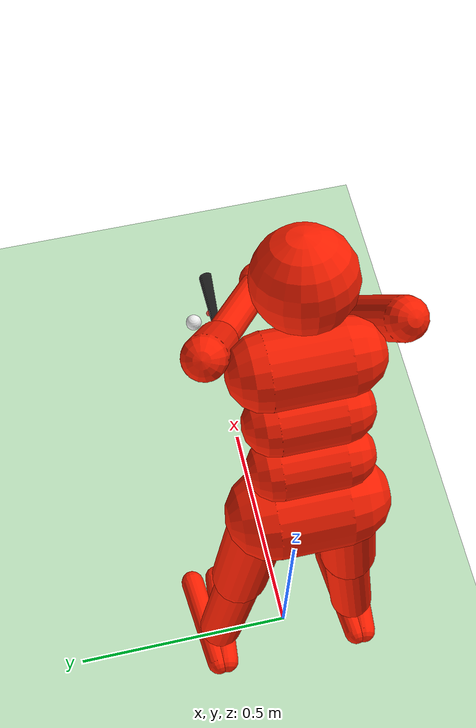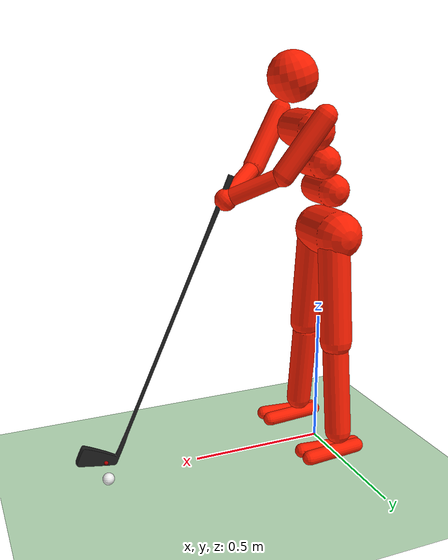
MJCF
<mujoco model="Simplified Human">

  <!-- passo de 0,5 ms para resolver o impacto, com gravidade em m/s² no sentido -Z
       o controlo atualiza em cada passo, são 2000 atualizações por segundo simulado -->
  <option timestep="0.0005" gravity="0 0 -9.81"/>
  <compiler meshdir="models"/>

  <asset>
    <texture type="skybox" builtin="gradient" rgb1=".3 .5 .7" rgb2="0 0 0" width="512" height="512"/>
    <texture name="body" type="cube" builtin="flat" mark="cross" width="127" height="1278"
             rgb1="1 .35 .05" rgb2="1 .35 .05" markrgb="1 1 1" random="0.01"/>
    <material name="body" texture="body" texuniform="true" rgba="1 .35 .05 1"/>
    <material name="club" rgba="0.12 0.12 0.12 1"/>
    <material name="ball" rgba="0.95 0.95 0.95 1"/>
    <material name="grass" rgba="0.15 0.55 0.12 1" reflectance="0.05"/>
    <mesh name="golf_club_mesh" file="golf_club.stl" scale="0.0103 0.0103 0.0103"/>
    <mesh name="golf_club_head_mesh" file="golf_club_head.stl" inertia="convex"/>
    <texture name="grid" type="2d" builtin="checker" width="512" height="512" rgb1=".1 .2 .3" rgb2=".2 .3 .4"/>
    <material name="grid" texture="grid" texrepeat="1 1" texuniform="true" reflectance=".2"/>
  </asset>

  <default>
    <motor ctrlrange="-1 1" ctrllimited="true"/>
    <default class="body">
      <geom type="capsule" condim="1" friction=".7" solimp=".9 .99 .003" solref=".015 1" material="body"/>
      <joint type="hinge" damping="2" stiffness="0" armature=".01" limited="true" solimplimit="0 .99 .01"/>
      <default class="big_joint">
        <joint damping="20" stiffness="100"/>
        <default class="big_stiff_joint">
          <joint damping="25" stiffness="140"/>
        </default>
      </default>
    </default>
  </default>

  <visual>
    <map force="0.1" zfar="30"/>
    <rgba haze="0.15 0.25 0.35 1"/>
    <quality shadowsize="4096"/>
    <global offwidth="800" offheight="800"/>
  </visual>

  <worldbody>

    <!-- câmara fixa em +X, voltada para a frente do jogador -->
    <camera name="front_fixed" pos="3.3 0 1.1" xyaxes="0 1 0 0 0 1" fovy="50"/>

    <geom name="floor" type="plane" size="5 5 0.1" rgba="0.75 0.9 0.75 1" contype="1" conaffinity="1"/>

    <!-- bola com 6 DOF livres, 3 translações e 3 rotações, sem atuação
         freejoint usa 7 coordenadas de posição por causa do quaternion da orientação -->
    <body name="golf_ball" pos="0.85 0.042 0.022">
      <freejoint name="golf_ball_free"/>
      <geom name="golf_ball_geom" type="sphere" size="0.0213" mass="0.046" material="ball"/>
    </body>

    <body name="torso" pos="0 0 1.255" childclass="body">
      <camera name="back" pos="-3 0 1" xyaxes="0 -1 0 1 0 2" mode="trackcom"/>
      <camera name="side" pos="0 -3 1" xyaxes="1 0 0 0 1 2" mode="trackcom" fovy="55"/>

      <!-- CINTURA -->
      <body name="lower_waist" pos="-.01 0 -.26">
        <geom name="lower_waist" fromto="0 -.06 0 0 .06 0" size=".06" mass="3.790639"/>

        <!-- PELVE -->
        <body name="pelvis" pos="0 0 -.165">
          <geom name="butt" fromto="-.02 -.07 0 -.02 .07 0" size=".09" mass="11.087618"/>

          <!-- PERNA DIREITA FIXA -->
          <body name="right_thigh" pos="0 -.08 -.04">
            <geom name="right_thigh" fromto="0 0 0 0 -.04 -.35" size=".06" mass="6.948605"/>
            <body name="right_shin" pos="0 -.04 -.388">
              <geom name="right_shin" fromto="0 0 0 0 -.04 -.31" size=".049" mass="4.051395"/>
              <body name="right_foot" pos="0 -.04 -.375">
                <geom name="right_right_foot" fromto="-.07 -.02 0 .14 -.04 0" size=".027" mass="0.5"/>
                <geom name="left_right_foot" fromto="-.07 0 0 .14 .02 0" size=".027" mass="0.5"/>
              </body>
            </body>
          </body>

          <!-- PERNA ESQUERDA FIXA-->
          <body name="left_thigh" pos="0 .08 -.04">
            <geom name="left_thigh" fromto="0 0 0 0 .04 -.35" size=".06" mass="6.948605"/>
            <body name="left_shin" pos="0 .04 -.388">
              <geom name="left_shin" fromto="0 0 0 0 .04 -.31" size=".049" mass="4.051395"/>
              <body name="left_foot" pos="0 .04 -.375">
                <geom name="left_left_foot" fromto="-.07 .02 0 .14 .04 0" size=".027" mass="0.5"/>
                <geom name="right_left_foot" fromto="-.07 0 0 .14 -.02 0" size=".027" mass="0.5"/>
              </body>
            </body>
          </body>

        </body>
      </body>

      <!-- 1 DOF de rotação vertical no tronco, a inclinação do corpo seguinte é fixa -->
      <body name="swing_axis" pos="-.01 0 -.29">
        <joint name="torso_turn" type="hinge" axis="0 0 1" range="-90 90" damping="5"/>
      <body name="upper_torso" quat=".994522 0 .15 0">
        <geom name="spine" fromto="0 0 0 .01 0 .26" size=".055" rgba="0 0 0 0" mass="5.311711"/>
        <geom name="torso" fromto=".01 -.07 .26 .01 .07 .26" size=".07" mass="6.019394"/>
        <geom name="upper_waist" fromto="0 -.06 .14 0 .06 .14" size=".06" mass="3.790638"/>

        <!-- CABEÇA -->
        <body name="head" pos=".01 0 .45">
          <geom name="head" type="sphere" size=".09" mass="5"/>
          <camera name="egocentric" pos=".09 0 0" xyaxes="0 -1 0 .1 0 1" fovy="80"/>
        </body>

      <!-- BRAÇO DIREITO -->
      <!-- 3 DOF no ombro direito e 1 no cotovelo abaixo
           os eixos são locais e acompanham as rotações anteriores, não são sempre eixos do mundo -->
      <body name="right_upper_arm" pos=".01 -.17 .32">
        <joint name="right_arm_lift" axis="0 1 0" range="-170 90"/>
        <joint name="right_shoulder1" axis="1 0 0" range="-170 170"/>
        <joint name="right_shoulder2" axis="0 0 1" range="-170 170"/>
        <geom name="right_upper_arm" fromto="0 0 0 .18 .05 -.15" size=".04" mass="1.746276"/>
        <body name="right_lower_arm" pos=".18 .05 -.15">
          <joint name="right_elbow" axis=".016 -.0198 .0126" range="-32.6 110" stiffness="0" damping="2"/>
          <!-- q=0 já corresponde a cerca de 32,61 graus de flexão geométrica do cotovelo -->
          <geom name="right_lower_arm" fromto="0 0 0 .18 .12 -.04" size=".031" mass="0.935767"/>
          <body name="right_hand" pos=".18 .12 -.04" quat="0.97 -0.01 0.25881905 0">
            <!-- 2 DOF no pulso direito, o taco fica rigidamente ligado à mão -->
            <joint name="right_wrist_cock" axis="0 0 1" range="-150 150" stiffness="0" damping="2"/>
            <!-- segunda rotação do pulso para controlar o desvio do taco -->
            <joint name="right_wrist_deviation" axis="0 1 0" range="-120 100" stiffness="0" damping="2"/>
            <geom name="right_hand" type="sphere" size=".04" mass="0.317957"/>
            <site name="shared_grip" size=".008" rgba="0 0 0 0"/>
            <site name="club_head" pos=".989 .010 -.286" size=".008" rgba="1 0 0 .7"/>
            <!-- TACO DE GOLFE -->
            <geom
              name="golf_club"
              type="mesh"
              density="1000"
              mesh="golf_club_mesh"
              material="club"
              pos="0.9751 0 -0.327"
              quat="0.88295 0 -0.46947 0"
              contype="0"
              conaffinity="0"
            />
            <!-- cabeça e haste têm formas de colisão separadas para evitar o volume convexo do taco inteiro
                 a massa fica na malha visual, estes dois geoms de colisão não acrescentam massa -->
            <geom name="club_head_collision" type="mesh" mesh="golf_club_head_mesh"
                  mass="0" rgba="0 0 0 0"/>
            <geom name="club_shaft_collision" type="capsule" fromto="-.04 0 .014 .975 0 -.315"
                  size=".006" mass="0" rgba="0 0 0 0"/>
          </body>
        </body>
      </body>

      <!-- BRAÇO ESQUERDO -->
      <!-- 3 DOF no ombro e 1 no cotovelo, não há uma joint de pulso esquerdo -->
      <body name="left_upper_arm" pos=".01 .17 .32">
        <joint name="left_arm_lift" axis="0 1 0" range="-170 90"/>
        <joint name="left_shoulder1" axis="1 0 0" range="-170 170"/>
        <joint name="left_shoulder2" axis="0 0 1" range="-170 170"/>
        <geom name="left_upper_arm" fromto="0 0 0 .18 -.05 -.15" size=".04" mass="1.953298"/>
        <body name="left_lower_arm" pos=".18 -.05 -.15">
          <joint name="left_elbow" axis="-.016 -.0198 -.0126" range="-32.6 110" stiffness="0" damping="2"/>
          <!-- tal como à direita, o ângulo da joint não é a flexão anatómica total -->
          <geom name="left_lower_arm" fromto="0 0 0 .18 -.12 -.04" size=".031" mass="1.046702"/>
          <site name="left_grip" pos=".18 -.12 -.04" size=".008" rgba="0 0 0 0"/>
        </body>
      </body>
      </body>
      </body>
    </body>
  </worldbody>

  <!-- excluímos colisões entre partes que se sobrepõem intencionalmente na pega e na cintura
       os contactos do taco com a bola e com o chão continuam ativos -->
  <contact>
    <pair geom1="club_head_collision" geom2="golf_ball_geom" condim="3"
          friction=".3 .3 .005 .0001 .0001" solref=".003 .35" solimp=".95 .99 .001"/>
    <!-- estas formas sobrepõem-se na cintura e não devem bloquear a rotação do tronco -->
    <exclude body1="lower_waist" body2="upper_torso"/>
    <exclude body1="pelvis" body2="upper_torso"/>
    <exclude body1="right_lower_arm" body2="left_lower_arm"/>
    <exclude body1="right_hand" body2="left_lower_arm"/>
  </contact>

  <equality>
    <connect site1="left_grip" site2="shared_grip" solref=".002 1" solimp=".99 .999 .001"/>
  </equality>

  <actuator>
    <motor name="right_elbow_motor" joint="right_elbow" ctrlrange="-90 90"/>
    <motor name="left_elbow_motor" joint="left_elbow" ctrlrange="-90 90"/>
    <motor name="right_arm_lift_motor" joint="right_arm_lift" ctrlrange="-180 180"/>
    <motor name="left_arm_lift_motor" joint="left_arm_lift" ctrlrange="-180 180"/>
    <motor name="torso_turn_motor" joint="torso_turn" ctrlrange="-250 250"/>
    <motor name="right_shoulder1_motor" joint="right_shoulder1" ctrlrange="-180 180"/>
    <motor name="right_shoulder2_motor" joint="right_shoulder2" ctrlrange="-180 180"/>
    <motor name="right_wrist_cock_motor" joint="right_wrist_cock" ctrlrange="-90 90"/>
    <motor name="right_wrist_deviation_motor" joint="right_wrist_deviation" ctrlrange="-90 90"/>
    <motor name="left_shoulder1_motor" joint="left_shoulder1" ctrlrange="-180 180"/>
    <motor name="left_shoulder2_motor" joint="left_shoulder2" ctrlrange="-180 180"/>
  </actuator>

</mujoco>
